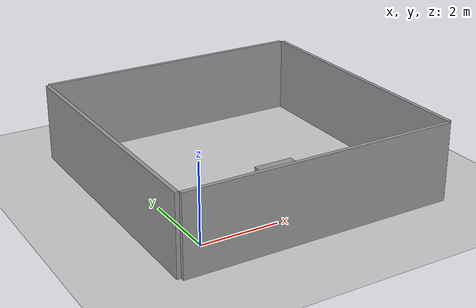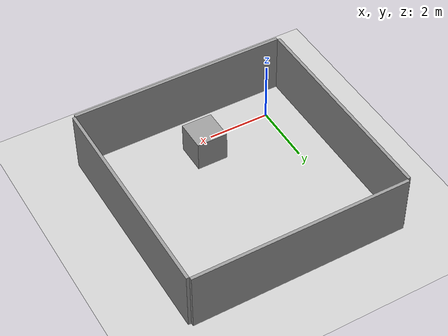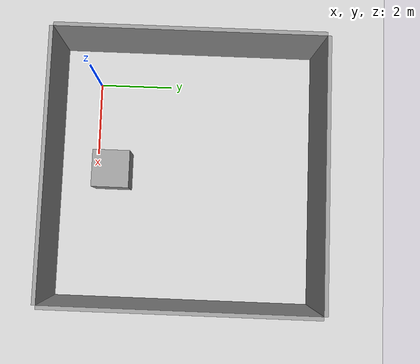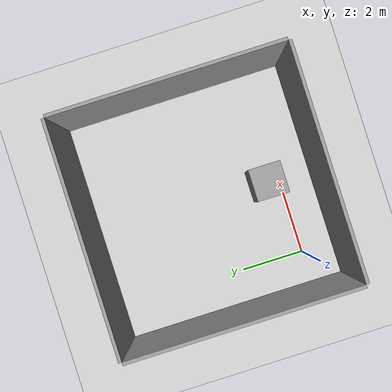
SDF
<?xml version="1.0" ?>
<sdf version="1.4">
  <world name="default">
    <include>
    	<uri>model://ground_plane</uri>
    </include>

    <include>
    	<uri>model://sun</uri>
    </include>

    <model name='wall_left'>
      <pose frame=''>0 0 0 0 0 0</pose>
      <link name='Wall_bottom'>
        <collision name='Wall_0_Collision'>
          <geometry>
            <box>
              <size>7 0.1 2</size>
            </box>
          </geometry>
          <pose frame=''>0 0 0 0 -0 0</pose>
          <max_contacts>10</max_contacts>
        </collision>
        <visual name='Wall_0_Visual'>
          <pose frame=''>0 0 0 0 -0 0</pose>
          <geometry>
            <box>
              <size>7 0.1 2</size>
            </box>
          </geometry>
          <material>
            <script>
              <uri>file://media/materials/scripts/gazebo.material</uri>
              <name>Gazebo/Grey</name>
            </script>
            <ambient>1 1 1 1</ambient>
          </material>
          <meta>
            <layer>0</layer>
          </meta>
        </visual>
        <pose frame=''>2.5 -1.05 1 0 -0 0</pose>
      </link>

      <link name='Wall_up'>
        <collision name='Wall_0_Collision'>
          <geometry>
            <box>
              <size>7 0.1 2</size>
            </box>
          </geometry>
          <pose frame=''>0 0 0 0 -0 0</pose>
          <max_contacts>10</max_contacts>
        </collision>
        <visual name='Wall_0_Visual'>
          <pose frame=''>0 0 0 0 -0 0</pose>
          <geometry>
            <box>
              <size>7 0.1 2</size>
            </box>
          </geometry>
          <material>
            <script>
              <uri>file://media/materials/scripts/gazebo.material</uri>
              <name>Gazebo/Grey</name>
            </script>
            <ambient>1 1 1 1</ambient>
          </material>
          <meta>
            <layer>0</layer>
          </meta>
        </visual>
        <pose frame=''>2.5 6.05 1 0 -0 0</pose>
      </link>

      <link name='Wall_left'>
        <collision name='Wall_1_Collision'>
          <geometry>
            <box>
              <size>0.1 7 2</size>
            </box>
          </geometry>
          <pose frame=''>0 0 0 0 -0 0</pose>
          <max_contacts>10</max_contacts>
        </collision>
        <visual name='Wall_1_Visual'>
          <pose frame=''>0 0 0 0 -0 0</pose>
          <geometry>
            <box>
              <size>0.1 7 2</size>
            </box>
          </geometry>
          <material>
            <script>
              <uri>file://media/materials/scripts/gazebo.material</uri>
              <name>Gazebo/Grey</name>
            </script>
            <ambient>1 1 1 1</ambient>
          </material>
          <meta>
            <layer>0</layer>
          </meta>
        </visual>
        <pose frame=''>-1.05 2.5 1 0 -0 0</pose>
      </link>

      <link name='Wall_right'>
        <collision name='Wall_1_Collision'>
          <geometry>
            <box>
              <size>0.1 7 2</size>
            </box>
          </geometry>
          <pose frame=''>0 0 0 0 -0 0</pose>
          <max_contacts>10</max_contacts>
        </collision>
        <visual name='Wall_1_Visual'>
          <pose frame=''>0 0 0 0 -0 0</pose>
          <geometry>
            <box>
              <size>0.1 7 2</size>
            </box>
          </geometry>
          <material>
            <script>
              <uri>file://media/materials/scripts/gazebo.material</uri>
              <name>Gazebo/Grey</name>
            </script>
            <ambient>1 1 1 1</ambient>
          </material>
          <meta>
            <layer>0</layer>
          </meta>
        </visual>
        <pose frame=''>6.05 2.5 1 0 -0 0</pose>
      </link>
      <static>1</static>
    </model>

    <model name='unit_box'>
      <pose frame=''>2.5 0.5 0.5 0 -0 0</pose>
      <link name='link'>
        <inertial>
          <mass>1</mass>
          <inertia>
            <ixx>0.166667</ixx>
            <ixy>0</ixy>
            <ixz>0</ixz>
            <iyy>0.166667</iyy>
            <iyz>0</iyz>
            <izz>0.166667</izz>
          </inertia>
          <pose frame=''>0 0 0 0 -0 0</pose>
        </inertial>
        <collision name='collision'>
          <geometry>
            <box>
              <size>1 1 1</size>
            </box>
          </geometry>
          <max_contacts>10</max_contacts>
          <surface>
            <contact>
              <ode/>
            </contact>
            <bounce/>
            <friction>
              <torsional>
                <ode/>
              </torsional>
              <ode/>
            </friction>
          </surface>
        </collision>
        <visual name='visual'>
          <geometry>
            <box>
              <size>1 1 1</size>
            </box>
          </geometry>
          <material>
            <script>
              <name>Gazebo/Grey</name>
              <uri>file://media/materials/scripts/gazebo.material</uri>
            </script>
          </material>
        </visual>
        <self_collide>0</self_collide>
        <enable_wind>0</enable_wind>
        <kinematic>0</kinematic>
      </link>
    </model>

  </world>
</sdf>
